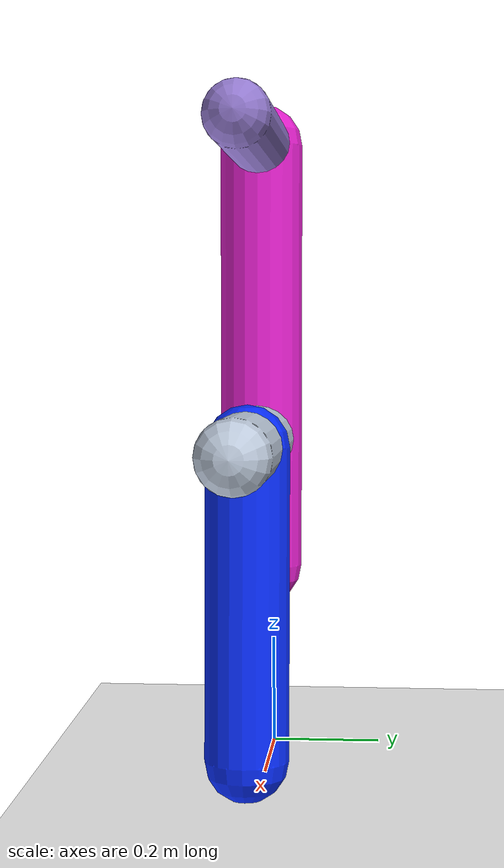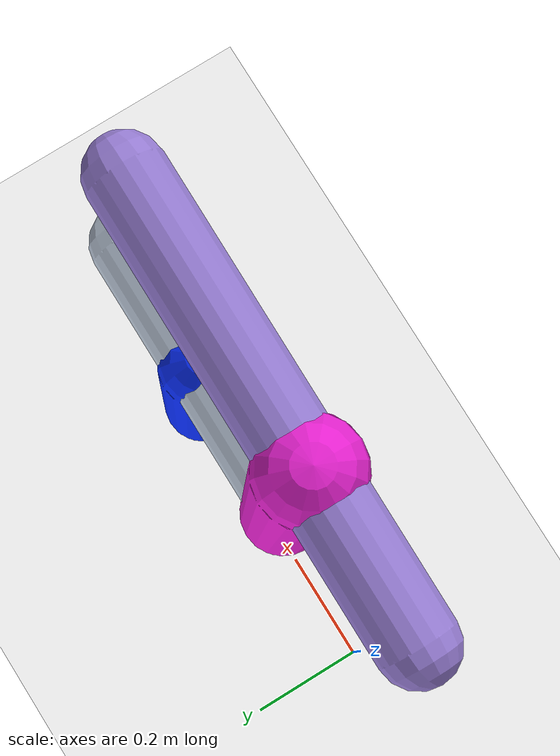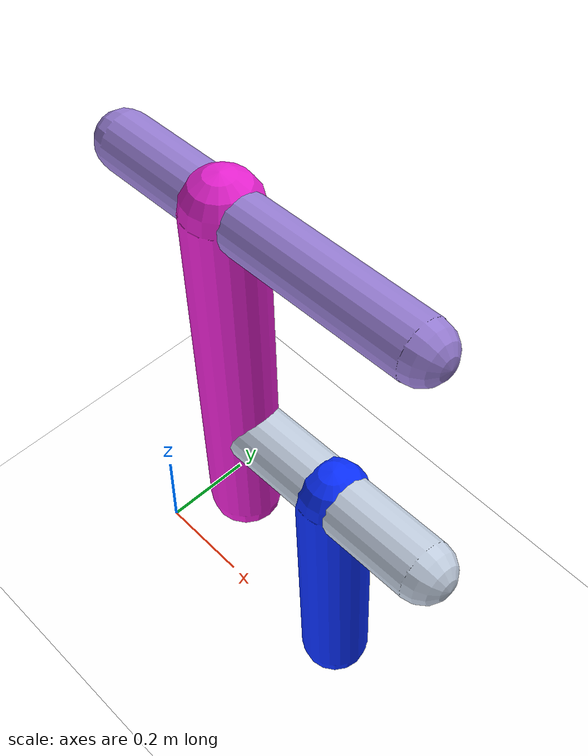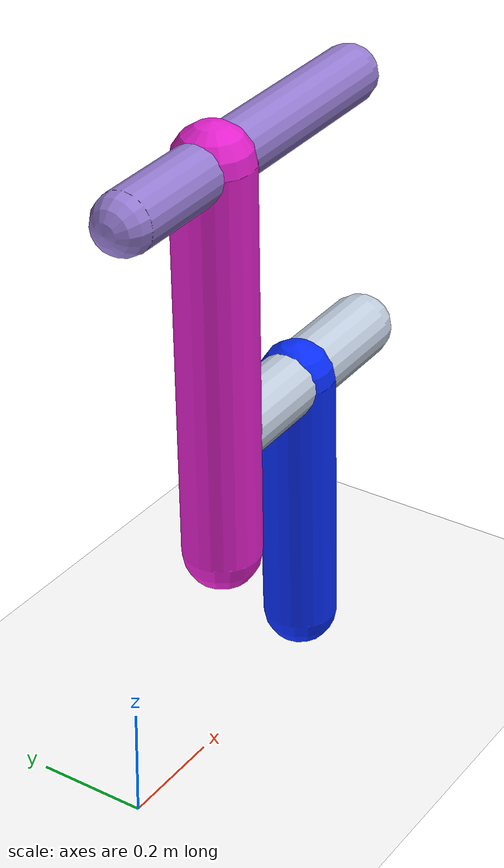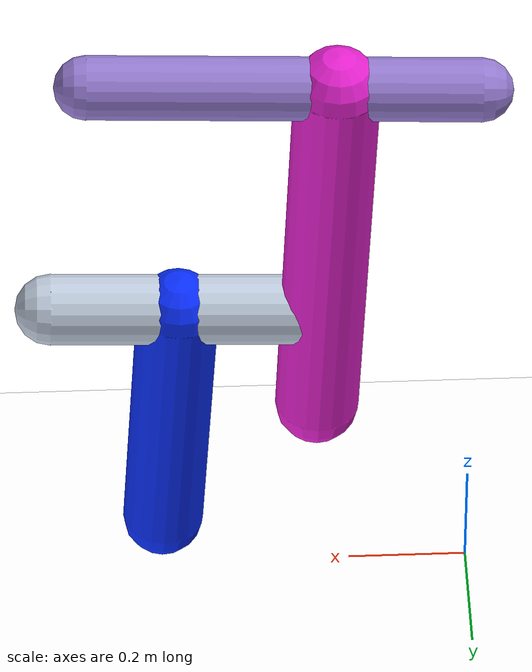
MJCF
<mujoco model="morphology">
  <option timestep="0.01"/>
  <default>
    <default class="/"/>
  </default>
  <asset>
    <texture name="texplane" type="2d" builtin="checker" rgb1="0.1 0.2 0.3" rgb2="0.2 0.3 0.4" width="300" height="300"/>
    <material name="MatPlane" class="/" texture="texplane" texrepeat="20 20" specular="1" shininess="1" reflectance="0.5"/>
  </asset>
  <worldbody>
    <light name="//unnamed_light_0" class="/" directional="true" pos="0 0 1.5" dir="0 0 -1.3" cutoff="1e+02" exponent="1" diffuse="1 1 1" specular="0.1 0.1 0.1"/>
    <geom name="ground" class="/" type="plane" size="15 15 0.5" material="MatPlane" rgba="1 1 1 1"/>
    <body name="body" pos="0 0 1.1">
      <geom name="geom0" class="/" type="capsule" contype="1" conaffinity="1" condim="3" size="0.052" rgba="0.59 0.49 0.83 1" friction="0.4 0.1 0.1" fromto="0 0 0 0.63 0 0.029"/>
      <body name="body1" pos="0.23 0 0.011">
        <geom name="geom1" class="/" type="capsule" contype="1" conaffinity="1" condim="3" size="0.07" rgba="0.91 0.13 0.82 1" friction="0.4 0.1 0.1" fromto="0 0 0 0.028 0 -0.72"/>
        <body name="body2" pos="0.019 0 -0.5">
          <geom name="geom2" class="/" type="capsule" contype="1" conaffinity="1" condim="3" size="0.059" rgba="0.76 0.81 0.88 1" friction="0.4 0.1 0.1" fromto="0 0 0 0.45 0 0.018"/>
          <body name="body3" pos="0.24 0 0.0098">
            <geom name="geom3" class="/" type="capsule" contype="1" conaffinity="1" condim="3" size="0.068" rgba="0.034 0.18 0.99 1" friction="0.4 0.1 0.1" fromto="0 0 0 0.03 0 -0.5"/>
            <joint name="joint3" class="/" type="hinge" axis="0 1 0" limited="true" stiffness="20" range="-36 36" armature="0.1" damping="2"/>
          </body>
          <joint name="joint2" class="/" type="hinge" axis="0 1 0" limited="true" stiffness="20" range="-46 46" armature="0.1" damping="2"/>
        </body>
        <joint name="joint1" class="/" type="hinge" axis="0 1 0" limited="true" stiffness="20" range="-54 54" armature="0.1" damping="2"/>
      </body>
      <joint name="rootx" class="/" type="slide" axis="1 0 0" limited="false" stiffness="0" armature="0" damping="0"/>
      <joint name="rootz" class="/" type="slide" axis="0 0 1" limited="false" stiffness="0" armature="0" damping="0"/>
      <joint name="rooty" class="/" type="hinge" axis="0 1 0" limited="false" stiffness="0" armature="0" damping="0"/>
    </body>
  </worldbody>
  <actuator>
    <motor name="motor3" class="/" ctrllimited="true" ctrlrange="-1 1" gear="1.3e+02" joint="joint3"/>
    <motor name="motor2" class="/" ctrllimited="true" ctrlrange="-1 1" gear="1.9e+02" joint="joint2"/>
    <motor name="motor1" class="/" ctrllimited="true" ctrlrange="-1 1" gear="1.4e+02" joint="joint1"/>
  </actuator>
  <sensor>
    <subtreelinvel name="velocity" body="body"/>
  </sensor>
</mujoco>
